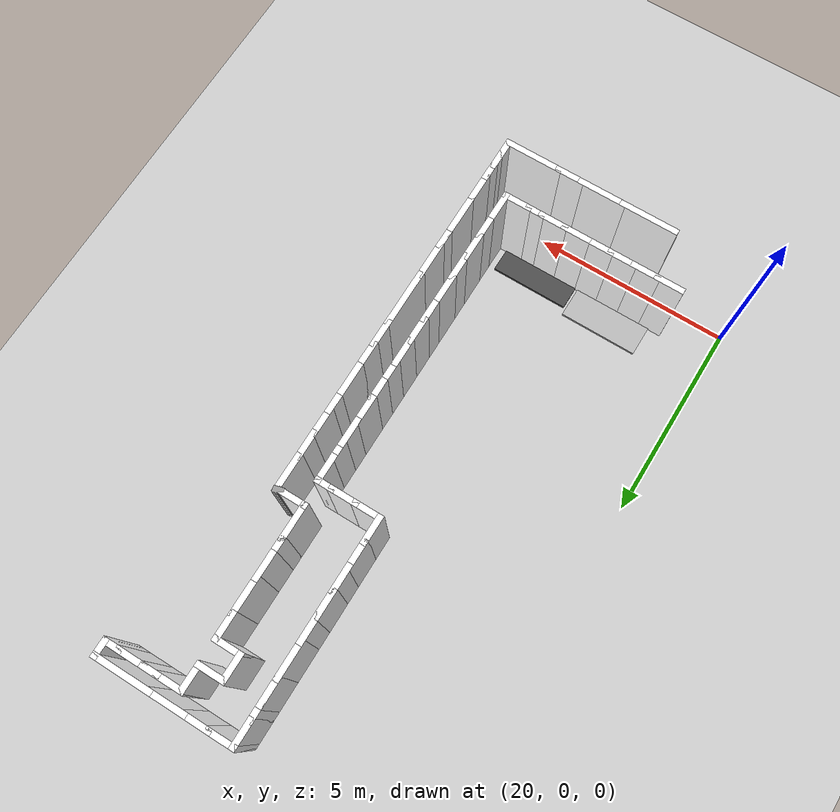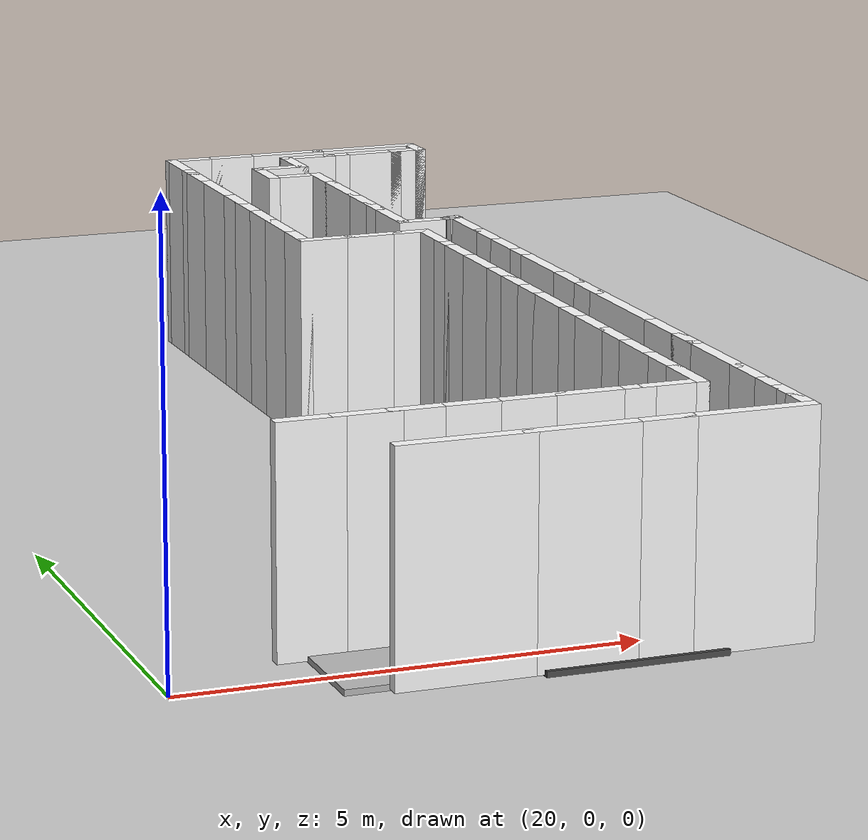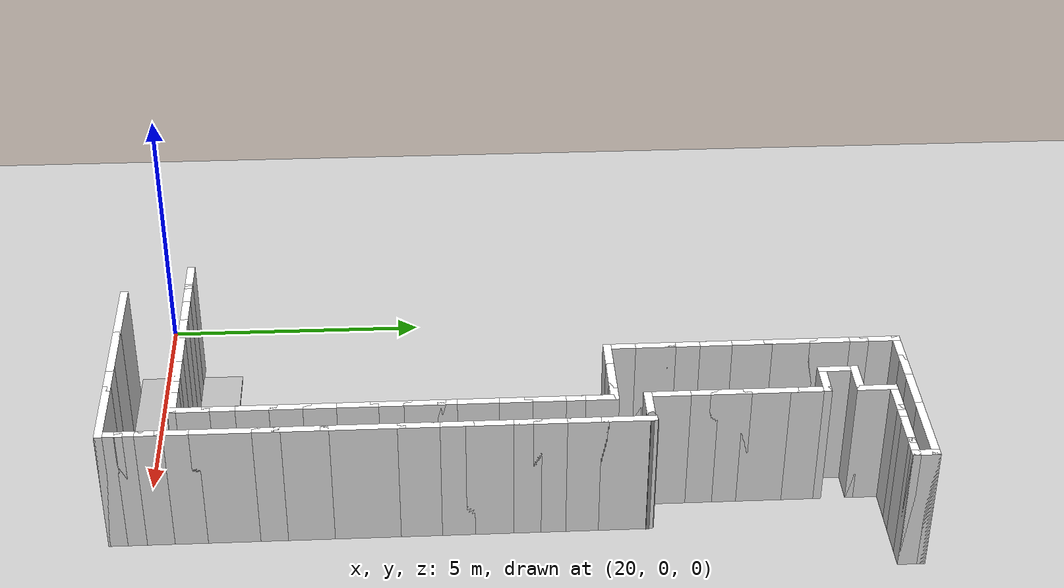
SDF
<sdf version="1.6">
 <world name="default">
  <model name="ground_plane">
   <static>1</static>
   <link name="link">
    <collision name="collision">
     <geometry><plane><normal>0 0 1</normal><size>100 100</size></plane></geometry>
     <surface><friction><ode><mu>100</mu><mu2>50</mu2></ode></friction></surface>
    </collision>
    <visual name="visual">
     <cast_shadows>0</cast_shadows>
     <geometry><plane><normal>0 0 1</normal><size>100 100</size></plane></geometry>
     <material>
      <script><uri>file://media/materials/scripts/gazebo.material</uri><name>Gazebo/Grey</name></script>
     </material>
    </visual>
   </link>
  </model>
  <model name="hightextured">
   <pose>14.0303 4.95039 0 0 0 -1.56774</pose>
   <link name="Wall_0">
    <collision name="Wall_0_Collision">
     <geometry><box><size>1.5 0.15 2.5</size></box></geometry>
     <pose>0 0 1.25 0 -0 0</pose>
    </collision>
    <visual name="Wall_0_Visual">
     <pose>0 0 1.25 0 -0 0</pose>
     <geometry><box><size>1.5 0.15 2.5</size></box></geometry>
     <material>
      <script><uri>file://media/materials/scripts/gazebo.material</uri><name>Gazebo/Texture11</name></script>
      <ambient>1 1 1 1</ambient>
     </material>
    </visual>
    <pose>-8.96206 13.0517 0 0 0 -1.5708</pose>
   </link>
   <link name="Wall_1">
    <collision name="Wall_1_Collision">
     <geometry><box><size>1 0.15 2.5</size></box></geometry>
     <pose>0 0 1.25 0 -0 0</pose>
    </collision>
    <visual name="Wall_1_Visual">
     <pose>0 0 1.25 0 -0 0</pose>
     <geometry><box><size>1 0.15 2.5</size></box></geometry>
     <material>
      <script><uri>file://media/materials/scripts/gazebo.material</uri><name>Gazebo/Texture1</name></script>
      <ambient>1 1 1 1</ambient>
     </material>
    </visual>
    <pose>-8.96206 11.9517 0 0 0 -1.5708</pose>
   </link>
   <link name="Wall_10">
    <collision name="Wall_10_Collision">
     <geometry><box><size>0.75 0.15 2.5</size></box></geometry>
     <pose>0 0 1.25 0 -0 0</pose>
    </collision>
    <visual name="Wall_10_Visual">
     <pose>0 0 1.25 0 -0 0</pose>
     <geometry><box><size>0.75 0.15 2.5</size></box></geometry>
     <material>
      <script><uri>file://media/materials/scripts/gazebo.material</uri><name>Gazebo/Texture2</name></script>
      <ambient>1 1 1 1</ambient>
     </material>
    </visual>
    <pose>-5.06206 10.3267 0 0 -0 0</pose>
   </link>
   <link name="Wall_11">
    <collision name="Wall_11_Collision">
     <geometry><box><size>0.75 0.15 2.5</size></box></geometry>
     <pose>0 0 1.25 0 -0 0</pose>
    </collision>
    <visual name="Wall_11_Visual">
     <pose>0 0 1.25 0 -0 0</pose>
     <geometry><box><size>0.75 0.15 2.5</size></box></geometry>
     <material>
      <script><uri>file://media/materials/scripts/gazebo.material</uri><name>Gazebo/Texture12</name></script>
      <ambient>1 1 1 1</ambient>
     </material>
    </visual>
    <pose>-4.46206 10.3267 0 0 -0 0</pose>
   </link>
   <link name="Wall_116">
    <collision name="Wall_116_Collision">
     <geometry><box><size>0.5 0.15 2.5</size></box></geometry>
     <pose>0 0 1.25 0 -0 0</pose>
    </collision>
    <visual name="Wall_116_Visual">
     <pose>0 0 1.25 0 -0 0</pose>
     <geometry><box><size>0.5 0.15 2.5</size></box></geometry>
     <material>
      <script><uri>file://media/materials/scripts/gazebo.material</uri><name>Gazebo/Texture17</name></script>
      <ambient>1 1 1 1</ambient>
     </material>
    </visual>
    <pose>4.68706 12.5233 0 0 -0 0</pose>
   </link>
   <link name="Wall_117">
    <collision name="Wall_117_Collision">
     <geometry><box><size>0.5 0.15 2.5</size></box></geometry>
     <pose>0 0 1.25 0 -0 0</pose>
    </collision>
    <visual name="Wall_117_Visual">
     <pose>0 0 1.25 0 -0 0</pose>
     <geometry><box><size>0.5 0.15 2.5</size></box></geometry>
     <material>
      <script><uri>file://media/materials/scripts/gazebo.material</uri><name>Gazebo/Texture18</name></script>
      <ambient>1 1 1 1</ambient>
     </material>
    </visual>
    <pose>5.03706 12.5233 0 0 -0 0</pose>
   </link>
   <link name="Wall_118">
    <collision name="Wall_118_Collision">
     <geometry><box><size>0.5 0.15 2.5</size></box></geometry>
     <pose>0 0 1.25 0 -0 0</pose>
    </collision>
    <visual name="Wall_118_Visual">
     <pose>0 0 1.25 0 -0 0</pose>
     <geometry><box><size>0.5 0.15 2.5</size></box></geometry>
     <material>
      <script><uri>file://media/materials/scripts/gazebo.material</uri><name>Gazebo/Texture18</name></script>
      <ambient>1 1 1 1</ambient>
     </material>
    </visual>
    <pose>5.38706 12.5233 0 0 -0 0</pose>
   </link>
   <link name="Wall_119">
    <collision name="Wall_119_Collision">
     <geometry><box><size>1.5 0.15 2.5</size></box></geometry>
     <pose>0 0 1.25 0 -0 0</pose>
    </collision>
    <visual name="Wall_119_Visual">
     <pose>0 0 1.25 0 -0 0</pose>
     <geometry><box><size>1.5 0.15 2.5</size></box></geometry>
     <material>
      <script><uri>file://media/materials/scripts/gazebo.material</uri><name>Gazebo/Texture17</name></script>
      <ambient>1 1 1 1</ambient>
     </material>
    </visual>
    <pose>5.56206 11.8483 0 0 0 -1.5708</pose>
   </link>
   <link name="Wall_12">
    <collision name="Wall_12_Collision">
     <geometry><box><size>0.75 0.15 2.5</size></box></geometry>
     <pose>0 0 1.25 0 -0 0</pose>
    </collision>
    <visual name="Wall_12_Visual">
     <pose>0 0 1.25 0 -0 0</pose>
     <geometry><box><size>0.75 0.15 2.5</size></box></geometry>
     <material>
      <script><uri>file://media/materials/scripts/gazebo.material</uri><name>Gazebo/Texture16</name></script>
      <ambient>1 1 1 1</ambient>
     </material>
    </visual>
    <pose>-3.86206 10.3267 0 0 -0 0</pose>
   </link>
   <link name="Wall_120">
    <collision name="Wall_120_Collision">
     <geometry><box><size>0.75 0.15 2.5</size></box></geometry>
     <pose>0 0 1.25 0 -0 0</pose>
    </collision>
    <visual name="Wall_120_Visual">
     <pose>0 0 1.25 0 -0 0</pose>
     <geometry><box><size>0.75 0.15 2.5</size></box></geometry>
     <material>
      <script><uri>file://media/materials/scripts/gazebo.material</uri><name>Gazebo/Texture15</name></script>
      <ambient>1 1 1 1</ambient>
     </material>
    </visual>
    <pose>5.56206 10.8733 0 0 0 -1.5708</pose>
   </link>
   <link name="Wall_121">
    <collision name="Wall_121_Collision">
     <geometry><box><size>1.25 0.15 2.5</size></box></geometry>
     <pose>0 0 1.25 0 -0 0</pose>
    </collision>
    <visual name="Wall_121_Visual">
     <pose>0 0 1.25 0 -0 0</pose>
     <geometry><box><size>1.25 0.15 2.5</size></box></geometry>
     <material>
      <script><uri>file://media/materials/scripts/gazebo.material</uri><name>Gazebo/Texture14</name></script>
      <ambient>1 1 1 1</ambient>
     </material>
    </visual>
    <pose>5.56206 10.0233 0 0 0 -1.5708</pose>
   </link>
   <link name="Wall_122">
    <collision name="Wall_122_Collision">
     <geometry><box><size>1.5 0.15 2.5</size></box></geometry>
     <pose>0 0 1.25 0 -0 0</pose>
    </collision>
    <visual name="Wall_122_Visual">
     <pose>0 0 1.25 0 -0 0</pose>
     <geometry><box><size>1.5 0.15 2.5</size></box></geometry>
     <material>
      <script><uri>file://media/materials/scripts/gazebo.material</uri><name>Gazebo/Texture13</name></script>
      <ambient>1 1 1 1</ambient>
     </material>
    </visual>
    <pose>5.56206 8.7983 0 0 0 -1.5708</pose>
   </link>
   <link name="Wall_13">
    <collision name="Wall_13_Collision">
     <geometry><box><size>0.75 0.15 2.5</size></box></geometry>
     <pose>0 0 1.25 0 -0 0</pose>
    </collision>
    <visual name="Wall_13_Visual">
     <pose>0 0 1.25 0 -0 0</pose>
     <geometry><box><size>0.75 0.15 2.5</size></box></geometry>
     <material>
      <script><uri>file://media/materials/scripts/gazebo.material</uri><name>Gazebo/Texture5</name></script>
      <ambient>1 1 1 1</ambient>
     </material>
    </visual>
    <pose>-3.56206 10.6267 0 0 -0 1.5708</pose>
   </link>
   <link name="Wall_14">
    <collision name="Wall_14_Collision">
     <geometry><box><size>0.75 0.15 2.5</size></box></geometry>
     <pose>0 0 1.25 0 -0 0</pose>
    </collision>
    <visual name="Wall_14_Visual">
     <pose>0 0 1.25 0 -0 0</pose>
     <geometry><box><size>0.75 0.15 2.5</size></box></geometry>
     <material>
      <script><uri>file://media/materials/scripts/gazebo.material</uri><name>Gazebo/Texture6</name></script>
      <ambient>1 1 1 1</ambient>
     </material>
    </visual>
    <pose>-3.56206 11.2267 0 0 -0 1.5708</pose>
   </link>
   <link name="Wall_15">
    <collision name="Wall_15_Collision">
     <geometry><box><size>0.5 0.15 2.5</size></box></geometry>
     <pose>0 0 1.25 0 -0 0</pose>
    </collision>
    <visual name="Wall_15_Visual">
     <pose>0 0 1.25 0 -0 0</pose>
     <geometry><box><size>0.5 0.15 2.5</size></box></geometry>
     <material>
      <script><uri>file://media/materials/scripts/gazebo.material</uri><name>Gazebo/Texture13</name></script>
      <ambient>1 1 1 1</ambient>
     </material>
    </visual>
    <pose>-3.56206 11.7017 0 0 -0 1.5708</pose>
   </link>
   <link name="Wall_16">
    <collision name="Wall_16_Collision">
     <geometry><box><size>0.75 0.15 2.5</size></box></geometry>
     <pose>0 0 1.25 0 -0 0</pose>
    </collision>
    <visual name="Wall_16_Visual">
     <pose>0 0 1.25 0 -0 0</pose>
     <geometry><box><size>0.75 0.15 2.5</size></box></geometry>
     <material>
      <script><uri>file://media/materials/scripts/gazebo.material</uri><name>Gazebo/Texture15</name></script>
      <ambient>1 1 1 1</ambient>
     </material>
    </visual>
    <pose>-3.26206 11.8767 0 0 -0 0</pose>
   </link>
   <link name="Wall_17">
    <collision name="Wall_17_Collision">
     <geometry><box><size>0.5 0.15 2.5</size></box></geometry>
     <pose>0 0 1.25 0 -0 0</pose>
    </collision>
    <visual name="Wall_17_Visual">
     <pose>0 0 1.25 0 -0 0</pose>
     <geometry><box><size>0.5 0.15 2.5</size></box></geometry>
     <material>
      <script><uri>file://media/materials/scripts/gazebo.material</uri><name>Gazebo/Texture14</name></script>
      <ambient>1 1 1 1</ambient>
     </material>
    </visual>
    <pose>-2.78706 11.8767 0 0 -0 0</pose>
   </link>
   <link name="Wall_18">
    <collision name="Wall_18_Collision">
     <geometry><box><size>0.75 0.15 2.5</size></box></geometry>
     <pose>0 0 1.25 0 -0 0</pose>
    </collision>
    <visual name="Wall_18_Visual">
     <pose>0 0 1.25 0 -0 0</pose>
     <geometry><box><size>0.75 0.15 2.5</size></box></geometry>
     <material>
      <script><uri>file://media/materials/scripts/gazebo.material</uri><name>Gazebo/Texture13</name></script>
      <ambient>1 1 1 1</ambient>
     </material>
    </visual>
    <pose>-2.31206 11.8767 0 0 -0 0</pose>
   </link>
   <link name="Wall_19">
    <collision name="Wall_19_Collision">
     <geometry><box><size>0.75 0.15 2.5</size></box></geometry>
     <pose>0 0 1.25 0 -0 0</pose>
    </collision>
    <visual name="Wall_19_Visual">
     <pose>0 0 1.25 0 -0 0</pose>
     <geometry><box><size>0.75 0.15 2.5</size></box></geometry>
     <material>
      <script><uri>file://media/materials/scripts/gazebo.material</uri><name>Gazebo/Texture11</name></script>
      <ambient>1 1 1 1</ambient>
     </material>
    </visual>
    <pose>-1.71206 11.8767 0 0 -0 0</pose>
   </link>
   <link name="Wall_2">
    <collision name="Wall_2_Collision">
     <geometry><box><size>0.75 0.15 2.5</size></box></geometry>
     <pose>0 0 1.25 0 -0 0</pose>
    </collision>
    <visual name="Wall_2_Visual">
     <pose>0 0 1.25 0 -0 0</pose>
     <geometry><box><size>0.75 0.15 2.5</size></box></geometry>
     <material>
      <script><uri>file://media/materials/scripts/gazebo.material</uri><name>Gazebo/Texture11</name></script>
      <ambient>1 1 1 1</ambient>
     </material>
    </visual>
    <pose>-8.96206 11.2267 0 0 0 -1.5708</pose>
   </link>
   <link name="Wall_20">
    <collision name="Wall_20_Collision">
     <geometry><box><size>0.75 0.15 2.5</size></box></geometry>
     <pose>0 0 1.25 0 -0 0</pose>
    </collision>
    <visual name="Wall_20_Visual">
     <pose>0 0 1.25 0 -0 0</pose>
     <geometry><box><size>0.75 0.15 2.5</size></box></geometry>
     <material>
      <script><uri>file://media/materials/scripts/gazebo.material</uri><name>Gazebo/Texture11</name></script>
      <ambient>1 1 1 1</ambient>
     </material>
    </visual>
    <pose>-1.11206 11.8767 0 0 -0 0</pose>
   </link>
   <link name="Wall_21">
    <collision name="Wall_21_Collision">
     <geometry><box><size>0.5 0.15 2.5</size></box></geometry>
     <pose>0 0 1.25 0 -0 0</pose>
    </collision>
    <visual name="Wall_21_Visual">
     <pose>0 0 1.25 0 -0 0</pose>
     <geometry><box><size>0.5 0.15 2.5</size></box></geometry>
     <material>
      <script><uri>file://media/materials/scripts/gazebo.material</uri><name>Gazebo/Texture11</name></script>
      <ambient>1 1 1 1</ambient>
     </material>
    </visual>
    <pose>-0.637059 11.8767 0 0 -0 0</pose>
   </link>
   <link name="Wall_22">
    <collision name="Wall_22_Collision">
     <geometry><box><size>0.75 0.15 2.5</size></box></geometry>
     <pose>0 0 1.25 0 -0 0</pose>
    </collision>
    <visual name="Wall_22_Visual">
     <pose>0 0 1.25 0 -0 0</pose>
     <geometry><box><size>0.75 0.15 2.5</size></box></geometry>
     <material>
      <script><uri>file://media/materials/scripts/gazebo.material</uri><name>Gazebo/Texture11</name></script>
      <ambient>1 1 1 1</ambient>
     </material>
    </visual>
    <pose>-0.162057 11.8767 0 0 -0 0</pose>
   </link>
   <link name="Wall_23">
    <collision name="Wall_23_Collision">
     <geometry><box><size>0.75 0.15 2.5</size></box></geometry>
     <pose>0 0 1.25 0 -0 0</pose>
    </collision>
    <visual name="Wall_23_Visual">
     <pose>0 0 1.25 0 -0 0</pose>
     <geometry><box><size>0.75 0.15 2.5</size></box></geometry>
     <material>
      <script><uri>file://media/materials/scripts/gazebo.material</uri><name>Gazebo/Texture11</name></script>
      <ambient>1 1 1 1</ambient>
     </material>
    </visual>
    <pose>0.437942 11.8767 0 0 -0 0</pose>
   </link>
   <link name="Wall_29">
    <collision name="Wall_29_Collision">
     <geometry><box><size>0.5 0.15 2.5</size></box></geometry>
     <pose>0 0 1.25 0 -0 0</pose>
    </collision>
    <visual name="Wall_29_Visual">
     <pose>0 0 1.25 0 -0 0</pose>
     <geometry><box><size>0.5 0.15 2.5</size></box></geometry>
     <material>
      <script><uri>file://media/materials/scripts/gazebo.material</uri><name>Gazebo/Texture11</name></script>
      <ambient>1 1 1 1</ambient>
     </material>
    </visual>
    <pose>-8.78706 13.7267 0 0 -0 0</pose>
   </link>
   <link name="Wall_3">
    <collision name="Wall_3_Collision">
     <geometry><box><size>0.75 0.15 2.5</size></box></geometry>
     <pose>0 0 1.25 0 -0 0</pose>
    </collision>
    <visual name="Wall_3_Visual">
     <pose>0 0 1.25 0 -0 0</pose>
     <geometry><box><size>0.75 0.15 2.5</size></box></geometry>
     <material>
      <script><uri>file://media/materials/scripts/gazebo.material</uri><name>Gazebo/Texture11</name></script>
      <ambient>1 1 1 1</ambient>
     </material>
    </visual>
    <pose>-8.96206 10.6267 0 0 0 -1.5708</pose>
   </link>
   <link name="Wall_30">
    <collision name="Wall_30_Collision">
     <geometry><box><size>0.5 0.15 2.5</size></box></geometry>
     <pose>0 0 1.25 0 -0 0</pose>
    </collision>
    <visual name="Wall_30_Visual">
     <pose>0 0 1.25 0 -0 0</pose>
     <geometry><box><size>0.5 0.15 2.5</size></box></geometry>
     <material>
      <script><uri>file://media/materials/scripts/gazebo.material</uri><name>Gazebo/Texture11</name></script>
      <ambient>1 1 1 1</ambient>
     </material>
    </visual>
    <pose>-8.61206 13.5517 0 0 0 -1.5708</pose>
   </link>
   <link name="Wall_31">
    <collision name="Wall_31_Collision">
     <geometry><box><size>0.75 0.15 2.5</size></box></geometry>
     <pose>0 0 1.25 0 -0 0</pose>
    </collision>
    <visual name="Wall_31_Visual">
     <pose>0 0 1.25 0 -0 0</pose>
     <geometry><box><size>0.75 0.15 2.5</size></box></geometry>
     <material>
      <script><uri>file://media/materials/scripts/gazebo.material</uri><name>Gazebo/Texture11</name></script>
      <ambient>1 1 1 1</ambient>
     </material>
    </visual>
    <pose>-8.61206 13.0767 0 0 0 -1.5708</pose>
   </link>
   <link name="Wall_32">
    <collision name="Wall_32_Collision">
     <geometry><box><size>0.5 0.15 2.5</size></box></geometry>
     <pose>0 0 1.25 0 -0 0</pose>
    </collision>
    <visual name="Wall_32_Visual">
     <pose>0 0 1.25 0 -0 0</pose>
     <geometry><box><size>0.5 0.15 2.5</size></box></geometry>
     <material>
      <script><uri>file://media/materials/scripts/gazebo.material</uri><name>Gazebo/Texture11</name></script>
      <ambient>1 1 1 1</ambient>
     </material>
    </visual>
    <pose>-8.61206 12.6017 0 0 0 -1.5708</pose>
   </link>
   <link name="Wall_33">
    <collision name="Wall_33_Collision">
     <geometry><box><size>0.75 0.15 2.5</size></box></geometry>
     <pose>0 0 1.25 0 -0 0</pose>
    </collision>
    <visual name="Wall_33_Visual">
     <pose>0 0 1.25 0 -0 0</pose>
     <geometry><box><size>0.75 0.15 2.5</size></box></geometry>
     <material>
      <script><uri>file://media/materials/scripts/gazebo.material</uri><name>Gazebo/Texture11</name></script>
      <ambient>1 1 1 1</ambient>
     </material>
    </visual>
    <pose>-8.61206 12.1267 0 0 0 -1.5708</pose>
   </link>
   <link name="Wall_34">
    <collision name="Wall_34_Collision">
     <geometry><box><size>0.75 0.15 2.5</size></box></geometry>
     <pose>0 0 1.25 0 -0 0</pose>
    </collision>
    <visual name="Wall_34_Visual">
     <pose>0 0 1.25 0 -0 0</pose>
     <geometry><box><size>0.75 0.15 2.5</size></box></geometry>
     <material>
      <script><uri>file://media/materials/scripts/gazebo.material</uri><name>Gazebo/Texture11</name></script>
      <ambient>1 1 1 1</ambient>
     </material>
    </visual>
    <pose>-8.31206 11.8267 0 0 -0 0</pose>
   </link>
   <link name="Wall_35">
    <collision name="Wall_35_Collision">
     <geometry><box><size>0.75 0.15 2.5</size></box></geometry>
     <pose>0 0 1.25 0 -0 0</pose>
    </collision>
    <visual name="Wall_35_Visual">
     <pose>0 0 1.25 0 -0 0</pose>
     <geometry><box><size>0.75 0.15 2.5</size></box></geometry>
     <material>
      <script><uri>file://media/materials/scripts/gazebo.material</uri><name>Gazebo/Texture11</name></script>
      <ambient>1 1 1 1</ambient>
     </material>
    </visual>
    <pose>-8.01206 11.5267 0 0 0 -1.5708</pose>
   </link>
   <link name="Wall_36">
    <collision name="Wall_36_Collision">
     <geometry><box><size>0.75 0.15 2.5</size></box></geometry>
     <pose>0 0 1.25 0 -0 0</pose>
    </collision>
    <visual name="Wall_36_Visual">
     <pose>0 0 1.25 0 -0 0</pose>
     <geometry><box><size>0.75 0.15 2.5</size></box></geometry>
     <material>
      <script><uri>file://media/materials/scripts/gazebo.material</uri><name>Gazebo/Texture11</name></script>
      <ambient>1 1 1 1</ambient>
     </material>
    </visual>
    <pose>-7.71206 11.2267 0 0 -0 0</pose>
   </link>
   <link name="Wall_37">
    <collision name="Wall_37_Collision">
     <geometry><box><size>0.75 0.15 2.5</size></box></geometry>
     <pose>0 0 1.25 0 -0 0</pose>
    </collision>
    <visual name="Wall_37_Visual">
     <pose>0 0 1.25 0 -0 0</pose>
     <geometry><box><size>0.75 0.15 2.5</size></box></geometry>
     <material>
      <script><uri>file://media/materials/scripts/gazebo.material</uri><name>Gazebo/Texture11</name></script>
      <ambient>1 1 1 1</ambient>
     </material>
    </visual>
    <pose>-7.41206 11.5267 0 0 -0 1.5708</pose>
   </link>
   <link name="Wall_38">
    <collision name="Wall_38_Collision">
     <geometry><box><size>0.75 0.15 2.5</size></box></geometry>
     <pose>0 0 1.25 0 -0 0</pose>
    </collision>
    <visual name="Wall_38_Visual">
     <pose>0 0 1.25 0 -0 0</pose>
     <geometry><box><size>0.75 0.15 2.5</size></box></geometry>
     <material>
      <script><uri>file://media/materials/scripts/gazebo.material</uri><name>Gazebo/Texture11</name></script>
      <ambient>1 1 1 1</ambient>
     </material>
    </visual>
    <pose>-7.11206 11.8267 0 0 -0 0</pose>
   </link>
   <link name="Wall_39">
    <collision name="Wall_39_Collision">
     <geometry><box><size>1 0.15 2.5</size></box></geometry>
     <pose>0 0 1.25 0 -0 0</pose>
    </collision>
    <visual name="Wall_39_Visual">
     <pose>0 0 1.25 0 -0 0</pose>
     <geometry><box><size>1 0.15 2.5</size></box></geometry>
     <material>
      <script><uri>file://media/materials/scripts/gazebo.material</uri><name>Gazebo/Texture11</name></script>
      <ambient>1 1 1 1</ambient>
     </material>
    </visual>
    <pose>-6.38706 11.8267 0 0 -0 0</pose>
   </link>
   <link name="Wall_4">
    <collision name="Wall_4_Collision">
     <geometry><box><size>0.75 0.15 2.5</size></box></geometry>
     <pose>0 0 1.25 0 -0 0</pose>
    </collision>
    <visual name="Wall_4_Visual">
     <pose>0 0 1.25 0 -0 0</pose>
     <geometry><box><size>0.75 0.15 2.5</size></box></geometry>
     <material>
      <script><uri>file://media/materials/scripts/gazebo.material</uri><name>Gazebo/Texture11</name></script>
      <ambient>1 1 1 1</ambient>
     </material>
    </visual>
    <pose>-8.66206 10.3267 0 0 -0 0</pose>
   </link>
   <link name="Wall_40">
    <collision name="Wall_40_Collision">
     <geometry><box><size>0.75 0.15 2.5</size></box></geometry>
     <pose>0 0 1.25 0 -0 0</pose>
    </collision>
    <visual name="Wall_40_Visual">
     <pose>0 0 1.25 0 -0 0</pose>
     <geometry><box><size>0.75 0.15 2.5</size></box></geometry>
     <material>
      <script><uri>file://media/materials/scripts/gazebo.material</uri><name>Gazebo/Texture11</name></script>
      <ambient>1 1 1 1</ambient>
     </material>
    </visual>
    <pose>-5.66206 11.8267 0 0 -0 0</pose>
   </link>
   <link name="Wall_41">
    <collision name="Wall_41_Collision">
     <geometry><box><size>0.5 0.15 2.5</size></box></geometry>
     <pose>0 0 1.25 0 -0 0</pose>
    </collision>
    <visual name="Wall_41_Visual">
     <pose>0 0 1.25 0 -0 0</pose>
     <geometry><box><size>0.5 0.15 2.5</size></box></geometry>
     <material>
      <script><uri>file://media/materials/scripts/gazebo.material</uri><name>Gazebo/Texture11</name></script>
      <ambient>1 1 1 1</ambient>
     </material>
    </visual>
    <pose>-5.18706 11.8267 0 0 -0 0</pose>
   </link>
   <link name="Wall_42">
    <collision name="Wall_42_Collision">
     <geometry><box><size>1 0.15 2.5</size></box></geometry>
     <pose>0 0 1.25 0 -0 0</pose>
    </collision>
    <visual name="Wall_42_Visual">
     <pose>0 0 1.25 0 -0 0</pose>
     <geometry><box><size>1 0.15 2.5</size></box></geometry>
     <material>
      <script><uri>file://media/materials/scripts/gazebo.material</uri><name>Gazebo/Texture11</name></script>
      <ambient>1 1 1 1</ambient>
     </material>
    </visual>
    <pose>-4.58706 11.8267 0 0 -0 0</pose>
   </link>
   <link name="Wall_43">
    <collision name="Wall_43_Collision">
     <geometry><box><size>0.75 0.15 2.5</size></box></geometry>
     <pose>0 0 1.25 0 -0 0</pose>
    </collision>
    <visual name="Wall_43_Visual">
     <pose>0 0 1.25 0 -0 0</pose>
     <geometry><box><size>0.75 0.15 2.5</size></box></geometry>
     <material>
      <script><uri>file://media/materials/scripts/gazebo.material</uri><name>Gazebo/Texture11</name></script>
      <ambient>1 1 1 1</ambient>
     </material>
    </visual>
    <pose>-4.16206 12.1267 0 0 -0 1.5708</pose>
   </link>
   <link name="Wall_44">
    <collision name="Wall_44_Collision">
     <geometry><box><size>0.25 0.15 2.5</size></box></geometry>
     <pose>0 0 1.25 0 -0 0</pose>
    </collision>
    <visual name="Wall_44_Visual">
     <pose>0 0 1.25 0 -0 0</pose>
     <geometry><box><size>0.25 0.15 2.5</size></box></geometry>
     <material>
      <script><uri>file://media/materials/scripts/gazebo.material</uri><name>Gazebo/Grey</name></script>
      <ambient>1 1 1 1</ambient>
     </material>
    </visual>
    <pose>-4.175 12.475 0 0 -0 1.8326</pose>
   </link>
   <link name="Wall_45">
    <collision name="Wall_45_Collision">
     <geometry><box><size>1 0.15 2.5</size></box></geometry>
     <pose>0 0 1.25 0 -0 0</pose>
    </collision>
    <visual name="Wall_45_Visual">
     <pose>0 0 1.25 0 -0 0</pose>
     <geometry><box><size>1 0.15 2.5</size></box></geometry>
     <material>
      <script><uri>file://media/materials/scripts/gazebo.material</uri><name>Gazebo/Texture11</name></script>
      <ambient>1 1 1 1</ambient>
     </material>
    </visual>
    <pose>-3.76294 12.5233 0 0 -0 0</pose>
   </link>
   <link name="Wall_46">
    <collision name="Wall_46_Collision">
     <geometry><box><size>0.75 0.15 2.5</size></box></geometry>
     <pose>0 0 1.25 0 -0 0</pose>
    </collision>
    <visual name="Wall_46_Visual">
     <pose>0 0 1.25 0 -0 0</pose>
     <geometry><box><size>0.75 0.15 2.5</size></box></geometry>
     <material>
      <script><uri>file://media/materials/scripts/gazebo.material</uri><name>Gazebo/Texture11</name></script>
      <ambient>1 1 1 1</ambient>
     </material>
    </visual>
    <pose>-3.03794 12.5233 0 0 -0 0</pose>
   </link>
   <link name="Wall_47">
    <collision name="Wall_47_Collision">
     <geometry><box><size>0.75 0.15 2.5</size></box></geometry>
     <pose>0 0 1.25 0 -0 0</pose>
    </collision>
    <visual name="Wall_47_Visual">
     <pose>0 0 1.25 0 -0 0</pose>
     <geometry><box><size>0.75 0.15 2.5</size></box></geometry>
     <material>
      <script><uri>file://media/materials/scripts/gazebo.material</uri><name>Gazebo/Texture11</name></script>
      <ambient>1 1 1 1</ambient>
     </material>
    </visual>
    <pose>-2.43794 12.5233 0 0 -0 0</pose>
   </link>
   <link name="Wall_48">
    <collision name="Wall_48_Collision">
     <geometry><box><size>0.5 0.15 2.5</size></box></geometry>
     <pose>0 0 1.25 0 -0 0</pose>
    </collision>
    <visual name="Wall_48_Visual">
     <pose>0 0 1.25 0 -0 0</pose>
     <geometry><box><size>0.5 0.15 2.5</size></box></geometry>
     <material>
      <script><uri>file://media/materials/scripts/gazebo.material</uri><name>Gazebo/Texture11</name></script>
      <ambient>1 1 1 1</ambient>
     </material>
    </visual>
    <pose>-1.96294 12.5233 0 0 -0 0</pose>
   </link>
   <link name="Wall_49">
    <collision name="Wall_49_Collision">
     <geometry><box><size>1 0.15 2.5</size></box></geometry>
     <pose>0 0 1.25 0 -0 0</pose>
    </collision>
    <visual name="Wall_49_Visual">
     <pose>0 0 1.25 0 -0 0</pose>
     <geometry><box><size>1 0.15 2.5</size></box></geometry>
     <material>
      <script><uri>file://media/materials/scripts/gazebo.material</uri><name>Gazebo/Texture11</name></script>
      <ambient>1 1 1 1</ambient>
     </material>
    </visual>
    <pose>-1.36294 12.5233 0 0 -0 0</pose>
   </link>
   <link name="Wall_5">
    <collision name="Wall_5_Collision">
     <geometry><box><size>0.5 0.15 2.5</size></box></geometry>
     <pose>0 0 1.25 0 -0 0</pose>
    </collision>
    <visual name="Wall_5_Visual">
     <pose>0 0 1.25 0 -0 0</pose>
     <geometry><box><size>0.5 0.15 2.5</size></box></geometry>
     <material>
      <script><uri>file://media/materials/scripts/gazebo.material</uri><name>Gazebo/Texture11</name></script>
      <ambient>1 1 1 1</ambient>
     </material>
    </visual>
    <pose>-8.18706 10.3267 0 0 -0 0</pose>
   </link>
   <link name="Wall_50">
    <collision name="Wall_50_Collision">
     <geometry><box><size>0.75 0.15 2.5</size></box></geometry>
     <pose>0 0 1.25 0 -0 0</pose>
    </collision>
    <visual name="Wall_50_Visual">
     <pose>0 0 1.25 0 -0 0</pose>
     <geometry><box><size>0.75 0.15 2.5</size></box></geometry>
     <material>
      <script><uri>file://media/materials/scripts/gazebo.material</uri><name>Gazebo/Texture11</name></script>
      <ambient>1 1 1 1</ambient>
     </material>
    </visual>
    <pose>-0.63794 12.5233 0 0 -0 0</pose>
   </link>
   <link name="Wall_51">
    <collision name="Wall_51_Collision">
     <geometry><box><size>0.75 0.15 2.5</size></box></geometry>
     <pose>0 0 1.25 0 -0 0</pose>
    </collision>
    <visual name="Wall_51_Visual">
     <pose>0 0 1.25 0 -0 0</pose>
     <geometry><box><size>0.75 0.15 2.5</size></box></geometry>
     <material>
      <script><uri>file://media/materials/scripts/gazebo.material</uri><name>Gazebo/Texture11</name></script>
      <ambient>1 1 1 1</ambient>
     </material>
    </visual>
    <pose>-0.037942 12.5233 0 0 -0 0</pose>
   </link>
   <link name="Wall_54">
    <collision name="Wall_54_Collision">
     <geometry><box><size>1.5 0.15 2.5</size></box></geometry>
     <pose>0 0 1.25 0 -0 0</pose>
    </collision>
    <visual name="Wall_54_Visual">
     <pose>0 0 1.25 0 -0 0</pose>
     <geometry><box><size>1.5 0.15 2.5</size></box></geometry>
     <material>
      <script><uri>file://media/materials/scripts/gazebo.material</uri><name>Gazebo/Texture11</name></script>
      <ambient>1 1 1 1</ambient>
     </material>
    </visual>
    <pose>0.93706 12.5233 0 0 -0 0</pose>
   </link>
   <link name="Wall_55">
    <collision name="Wall_55_Collision">
     <geometry><box><size>1 0.15 2.5</size></box></geometry>
     <pose>0 0 1.25 0 -0 0</pose>
    </collision>
    <visual name="Wall_55_Visual">
     <pose>0 0 1.25 0 -0 0</pose>
     <geometry><box><size>1 0.15 2.5</size></box></geometry>
     <material>
      <script><uri>file://media/materials/scripts/gazebo.material</uri><name>Gazebo/Texture11</name></script>
      <ambient>1 1 1 1</ambient>
     </material>
    </visual>
    <pose>2.03706 12.5233 0 0 -0 0</pose>
   </link>
   <link name="Wall_56">
    <collision name="Wall_56_Collision">
     <geometry><box><size>0.5 0.15 2.5</size></box></geometry>
     <pose>0 0 1.25 0 -0 0</pose>
    </collision>
    <visual name="Wall_56_Visual">
     <pose>0 0 1.25 0 -0 0</pose>
     <geometry><box><size>0.5 0.15 2.5</size></box></geometry>
     <material>
      <script><uri>file://media/materials/scripts/gazebo.material</uri><name>Gazebo/Texture11</name></script>
      <ambient>1 1 1 1</ambient>
     </material>
    </visual>
    <pose>2.63706 12.5233 0 0 -0 0</pose>
   </link>
   <link name="Wall_57">
    <collision name="Wall_57_Collision">
     <geometry><box><size>1.25 0.15 2.5</size></box></geometry>
     <pose>0 0 1.25 0 -0 0</pose>
    </collision>
    <visual name="Wall_57_Visual">
     <pose>0 0 1.25 0 -0 0</pose>
     <geometry><box><size>1.25 0.15 2.5</size></box></geometry>
     <material>
      <script><uri>file://media/materials/scripts/gazebo.material</uri><name>Gazebo/Texture11</name></script>
      <ambient>1 1 1 1</ambient>
     </material>
    </visual>
    <pose>3.36206 12.5233 0 0 -0 0</pose>
   </link>
   <link name="Wall_58">
    <collision name="Wall_58_Collision">
     <geometry><box><size>0.75 0.15 2.5</size></box></geometry>
     <pose>0 0 1.25 0 -0 0</pose>
    </collision>
    <visual name="Wall_58_Visual">
     <pose>0 0 1.25 0 -0 0</pose>
     <geometry><box><size>0.75 0.15 2.5</size></box></geometry>
     <material>
      <script><uri>file://media/materials/scripts/gazebo.material</uri><name>Gazebo/Texture11</name></script>
      <ambient>1 1 1 1</ambient>
     </material>
    </visual>
    <pose>4.21206 12.5233 0 0 -0 0</pose>
   </link>
   <link name="Wall_6">
    <collision name="Wall_6_Collision">
     <geometry><box><size>0.75 0.15 2.5</size></box></geometry>
     <pose>0 0 1.25 0 -0 0</pose>
    </collision>
    <visual name="Wall_6_Visual">
     <pose>0 0 1.25 0 -0 0</pose>
     <geometry><box><size>0.75 0.15 2.5</size></box></geometry>
     <material>
      <script><uri>file://media/materials/scripts/gazebo.material</uri><name>Gazebo/Texture11</name></script>
      <ambient>1 1 1 1</ambient>
     </material>
    </visual>
    <pose>-7.71206 10.3267 0 0 -0 0</pose>
   </link>
   <link name="Wall_60">
    <collision name="Wall_60_Collision">
     <geometry><box><size>0.75 0.15 2.5</size></box></geometry>
     <pose>0 0 1.25 0 -0 0</pose>
    </collision>
    <visual name="Wall_60_Visual">
     <pose>0 0 1.25 0 -0 0</pose>
     <geometry><box><size>0.75 0.15 2.5</size></box></geometry>
     <material>
      <script><uri>file://media/materials/scripts/gazebo.material</uri><name>Gazebo/Texture11</name></script>
      <ambient>1 1 1 1</ambient>
     </material>
    </visual>
    <pose>1.03794 11.8767 0 0 -0 0</pose>
   </link>
   <link name="Wall_61">
    <collision name="Wall_61_Collision">
     <geometry><box><size>0.75 0.15 2.5</size></box></geometry>
     <pose>0 0 1.25 0 -0 0</pose>
    </collision>
    <visual name="Wall_61_Visual">
     <pose>0 0 1.25 0 -0 0</pose>
     <geometry><box><size>0.75 0.15 2.5</size></box></geometry>
     <material>
      <script><uri>file://media/materials/scripts/gazebo.material</uri><name>Gazebo/Texture11</name></script>
      <ambient>1 1 1 1</ambient>
     </material>
    </visual>
    <pose>1.63794 11.8767 0 0 -0 0</pose>
   </link>
   <link name="Wall_62">
    <collision name="Wall_62_Collision">
     <geometry><box><size>0.75 0.15 2.5</size></box></geometry>
     <pose>0 0 1.25 0 -0 0</pose>
    </collision>
    <visual name="Wall_62_Visual">
     <pose>0 0 1.25 0 -0 0</pose>
     <geometry><box><size>0.75 0.15 2.5</size></box></geometry>
     <material>
      <script><uri>file://media/materials/scripts/gazebo.material</uri><name>Gazebo/Texture11</name></script>
      <ambient>1 1 1 1</ambient>
     </material>
    </visual>
    <pose>2.23794 11.8767 0 0 -0 0</pose>
   </link>
   <link name="Wall_63">
    <collision name="Wall_63_Collision">
     <geometry><box><size>0.75 0.15 2.5</size></box></geometry>
     <pose>0 0 1.25 0 -0 0</pose>
    </collision>
    <visual name="Wall_63_Visual">
     <pose>0 0 1.25 0 -0 0</pose>
     <geometry><box><size>0.75 0.15 2.5</size></box></geometry>
     <material>
      <script><uri>file://media/materials/scripts/gazebo.material</uri><name>Gazebo/Texture11</name></script>
      <ambient>1 1 1 1</ambient>
     </material>
    </visual>
    <pose>2.83794 11.8767 0 0 -0 0</pose>
   </link>
   <link name="Wall_64">
    <collision name="Wall_64_Collision">
     <geometry><box><size>0.75 0.15 2.5</size></box></geometry>
     <pose>0 0 1.25 0 -0 0</pose>
    </collision>
    <visual name="Wall_64_Visual">
     <pose>0 0 1.25 0 -0 0</pose>
     <geometry><box><size>0.75 0.15 2.5</size></box></geometry>
     <material>
      <script><uri>file://media/materials/scripts/gazebo.material</uri><name>Gazebo/Texture11</name></script>
      <ambient>1 1 1 1</ambient>
     </material>
    </visual>
    <pose>3.43794 11.8767 0 0 -0 0</pose>
   </link>
   <link name="Wall_65">
    <collision name="Wall_65_Collision">
     <geometry><box><size>0.75 0.15 2.5</size></box></geometry>
     <pose>0 0 1.25 0 -0 0</pose>
    </collision>
    <visual name="Wall_65_Visual">
     <pose>0 0 1.25 0 -0 0</pose>
     <geometry><box><size>0.75 0.15 2.5</size></box></geometry>
     <material>
      <script><uri>file://media/materials/scripts/gazebo.material</uri><name>Gazebo/Texture11</name></script>
      <ambient>1 1 1 1</ambient>
     </material>
    </visual>
    <pose>4.03794 11.8767 0 0 -0 0</pose>
   </link>
   <link name="Wall_66">
    <collision name="Wall_66_Collision">
     <geometry><box><size>0.75 0.15 2.5</size></box></geometry>
     <pose>0 0 1.25 0 -0 0</pose>
    </collision>
    <visual name="Wall_66_Visual">
     <pose>0 0 1.25 0 -0 0</pose>
     <geometry><box><size>0.75 0.15 2.5</size></box></geometry>
     <material>
      <script><uri>file://media/materials/scripts/gazebo.material</uri><name>Gazebo/Texture11</name></script>
      <ambient>1 1 1 1</ambient>
     </material>
    </visual>
    <pose>4.33794 11.5767 0 0 0 -1.5708</pose>
   </link>
   <link name="Wall_67">
    <collision name="Wall_67_Collision">
     <geometry><box><size>0.5 0.15 2.5</size></box></geometry>
     <pose>0 0 1.25 0 -0 0</pose>
    </collision>
    <visual name="Wall_67_Visual">
     <pose>0 0 1.25 0 -0 0</pose>
     <geometry><box><size>0.5 0.15 2.5</size></box></geometry>
     <material>
      <script><uri>file://media/materials/scripts/gazebo.material</uri><name>Gazebo/Texture11</name></script>
      <ambient>1 1 1 1</ambient>
     </material>
    </visual>
    <pose>4.33794 11.1017 0 0 0 -1.5708</pose>
   </link>
   <link name="Wall_68">
    <collision name="Wall_68_Collision">
     <geometry><box><size>0.75 0.15 2.5</size></box></geometry>
     <pose>0 0 1.25 0 -0 0</pose>
    </collision>
    <visual name="Wall_68_Visual">
     <pose>0 0 1.25 0 -0 0</pose>
     <geometry><box><size>0.75 0.15 2.5</size></box></geometry>
     <material>
      <script><uri>file://media/materials/scripts/gazebo.material</uri><name>Gazebo/Texture11</name></script>
      <ambient>1 1 1 1</ambient>
     </material>
    </visual>
    <pose>4.33794 10.6267 0 0 0 -1.5708</pose>
   </link>
   <link name="Wall_69">
    <collision name="Wall_69_Collision">
     <geometry><box><size>0.75 0.15 2.5</size></box></geometry>
     <pose>0 0 1.25 0 -0 0</pose>
    </collision>
    <visual name="Wall_69_Visual">
     <pose>0 0 1.25 0 -0 0</pose>
     <geometry><box><size>0.75 0.15 2.5</size></box></geometry>
     <material>
      <script><uri>file://media/materials/scripts/gazebo.material</uri><name>Gazebo/Texture11</name></script>
      <ambient>1 1 1 1</ambient>
     </material>
    </visual>
    <pose>4.33794 10.0267 0 0 0 -1.5708</pose>
   </link>
   <link name="Wall_7">
    <collision name="Wall_7_Collision">
     <geometry><box><size>1 0.15 2.5</size></box></geometry>
     <pose>0 0 1.25 0 -0 0</pose>
    </collision>
    <visual name="Wall_7_Visual">
     <pose>0 0 1.25 0 -0 0</pose>
     <geometry><box><size>1 0.15 2.5</size></box></geometry>
     <material>
      <script><uri>file://media/materials/scripts/gazebo.material</uri><name>Gazebo/Texture11</name></script>
      <ambient>1 1 1 1</ambient>
     </material>
    </visual>
    <pose>-6.98706 10.3267 0 0 -0 0</pose>
   </link>
   <link name="Wall_70">
    <collision name="Wall_70_Collision">
     <geometry><box><size>0.75 0.15 2.5</size></box></geometry>
     <pose>0 0 1.25 0 -0 0</pose>
    </collision>
    <visual name="Wall_70_Visual">
     <pose>0 0 1.25 0 -0 0</pose>
     <geometry><box><size>0.75 0.15 2.5</size></box></geometry>
     <material>
      <script><uri>file://media/materials/scripts/gazebo.material</uri><name>Gazebo/Texture11</name></script>
      <ambient>1 1 1 1</ambient>
     </material>
    </visual>
    <pose>4.33794 9.4267 0 0 0 -1.5708</pose>
   </link>
   <link name="Wall_71">
    <collision name="Wall_71_Collision">
     <geometry><box><size>0.75 0.15 2.5</size></box></geometry>
     <pose>0 0 1.25 0 -0 0</pose>
    </collision>
    <visual name="Wall_71_Visual">
     <pose>0 0 1.25 0 -0 0</pose>
     <geometry><box><size>0.75 0.15 2.5</size></box></geometry>
     <material>
      <script><uri>file://media/materials/scripts/gazebo.material</uri><name>Gazebo/Texture11</name></script>
      <ambient>1 1 1 1</ambient>
     </material>
    </visual>
    <pose>4.33794 8.8267 0 0 0 -1.5708</pose>
   </link>
   <link name="Wall_72">
    <collision name="Wall_72_Collision">
     <geometry><box><size>0.75 0.15 2.5</size></box></geometry>
     <pose>0 0 1.25 0 -0 0</pose>
    </collision>
    <visual name="Wall_72_Visual">
     <pose>0 0 1.25 0 -0 0</pose>
     <geometry><box><size>0.75 0.15 2.5</size></box></geometry>
     <material>
      <script><uri>file://media/materials/scripts/gazebo.material</uri><name>Gazebo/Texture11</name></script>
      <ambient>1 1 1 1</ambient>
     </material>
    </visual>
    <pose>4.33794 8.2267 0 0 0 -1.5708</pose>
   </link>
   <link name="Wall_73">
    <collision name="Wall_73_Collision">
     <geometry><box><size>0.75 0.15 2.5</size></box></geometry>
     <pose>0 0 1.25 0 -0 0</pose>
    </collision>
    <visual name="Wall_73_Visual">
     <pose>0 0 1.25 0 -0 0</pose>
     <geometry><box><size>0.75 0.15 2.5</size></box></geometry>
     <material>
      <script><uri>file://media/materials/scripts/gazebo.material</uri><name>Gazebo/Texture11</name></script>
      <ambient>1 1 1 1</ambient>
     </material>
    </visual>
    <pose>4.33794 7.6267 0 0 0 -1.5708</pose>
   </link>
   <link name="Wall_8">
    <collision name="Wall_8_Collision">
     <geometry><box><size>0.75 0.15 2.5</size></box></geometry>
     <pose>0 0 1.25 0 -0 0</pose>
    </collision>
    <visual name="Wall_8_Visual">
     <pose>0 0 1.25 0 -0 0</pose>
     <geometry><box><size>0.75 0.15 2.5</size></box></geometry>
     <material>
      <script><uri>file://media/materials/scripts/gazebo.material</uri><name>Gazebo/Texture11</name></script>
      <ambient>1 1 1 1</ambient>
     </material>
    </visual>
    <pose>-6.26206 10.3267 0 0 -0 0</pose>
   </link>
   <link name="Wall_9">
    <collision name="Wall_9_Collision">
     <geometry><box><size>0.75 0.15 2.5</size></box></geometry>
     <pose>0 0 1.25 0 -0 0</pose>
    </collision>
    <visual name="Wall_9_Visual">
     <pose>0 0 1.25 0 -0 0</pose>
     <geometry><box><size>0.75 0.15 2.5</size></box></geometry>
     <material>
      <script><uri>file://media/materials/scripts/gazebo.material</uri><name>Gazebo/Texture11</name></script>
      <ambient>1 1 1 1</ambient>
     </material>
    </visual>
    <pose>-5.66206 10.3267 0 0 -0 0</pose>
   </link>
   <static>1</static>
  </model>
  <model name="texture1_2">
   <static>1</static>
   <link name="link">
    <collision name="collision"><geometry><box><size>2 2 0.1</size></box></geometry></collision>
    <visual name="visual">
     <cast_shadows>0</cast_shadows>
     <geometry><box><size>2 2 0.1</size></box></geometry>
     <material>
      <script>
       <uri>model://texture1/materials/scripts</uri>
       <uri>model://texture1/materials/textures</uri>
       <name>vrc/texture1</name>
      </script>
     </material>
    </visual>
   </link>
   <pose>22.6223 0.480653 0 0 -0 0</pose>
  </model>
  <model name="asphalt_plane_2">
   <static>1</static>
   <link name="link">
    <collision name="collision"><geometry><box><size>2 2 0.1</size></box></geometry></collision>
    <visual name="visual">
     <cast_shadows>0</cast_shadows>
     <geometry><box><size>2 2 0.1</size></box></geometry>
     <material>
      <script>
       <uri>model://texture3/materials/scripts</uri>
       <uri>model://texture3/materials/textures</uri>
       <name>vrc/asphalt</name>
      </script>
     </material>
    </visual>
   </link>
   <pose>24.6818 0.300513 0 0 -0 0</pose>
  </model>
 </world>
</sdf>
